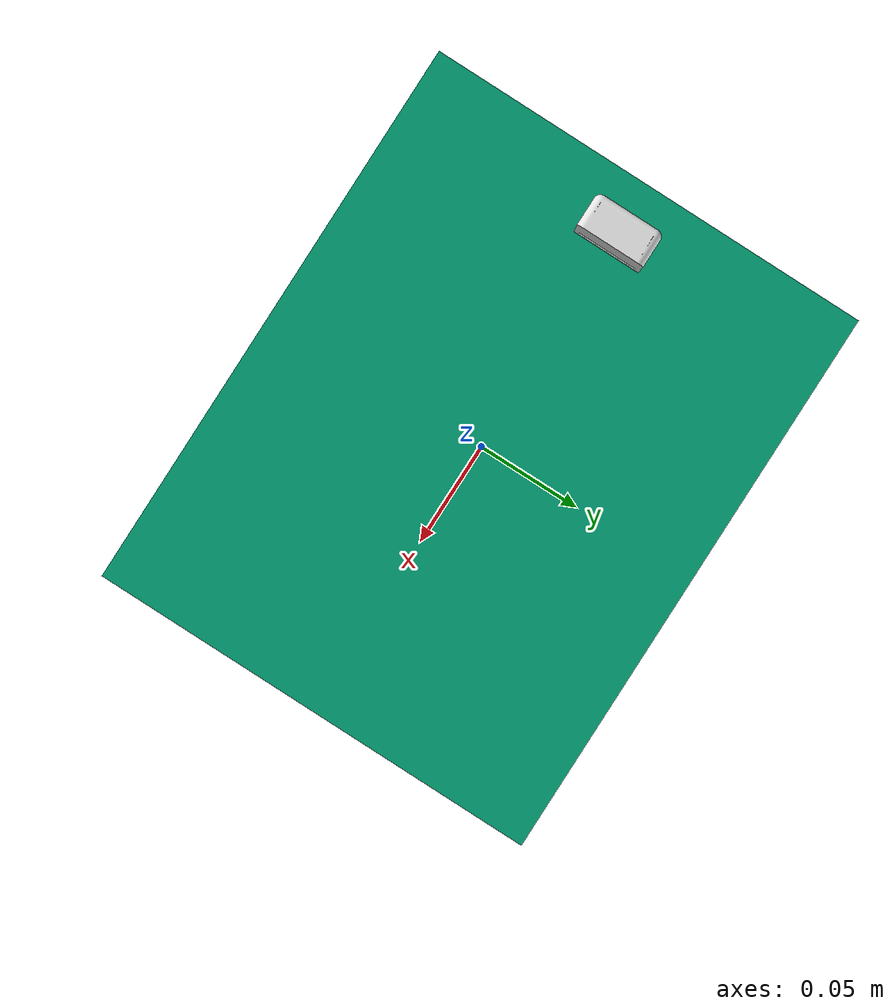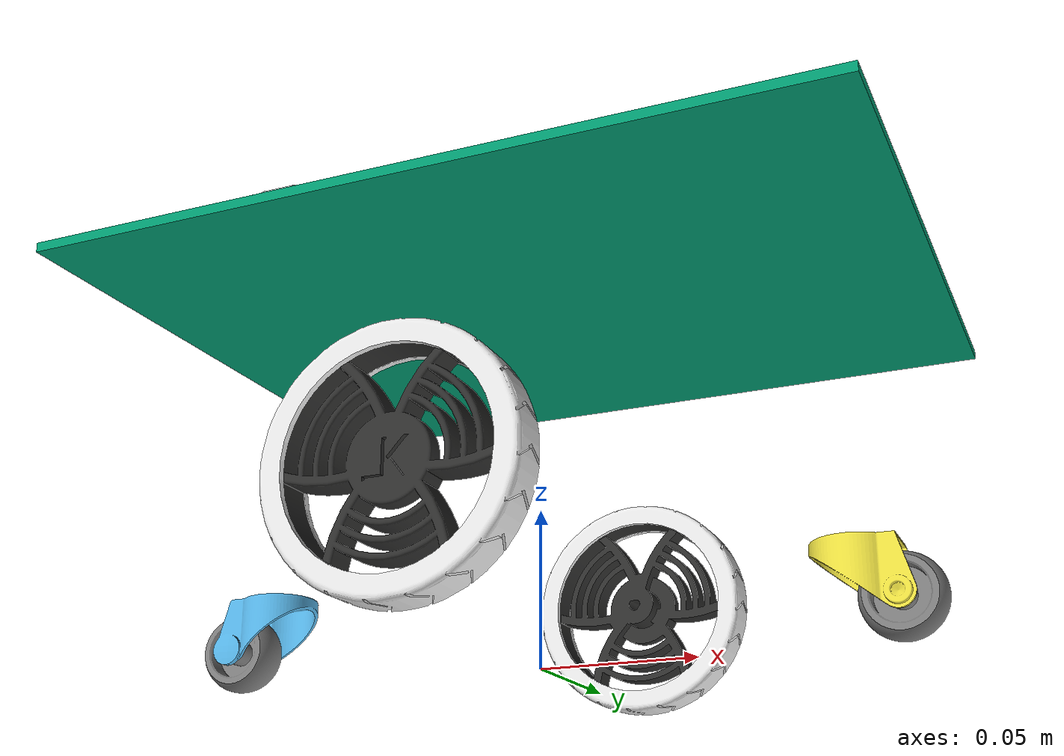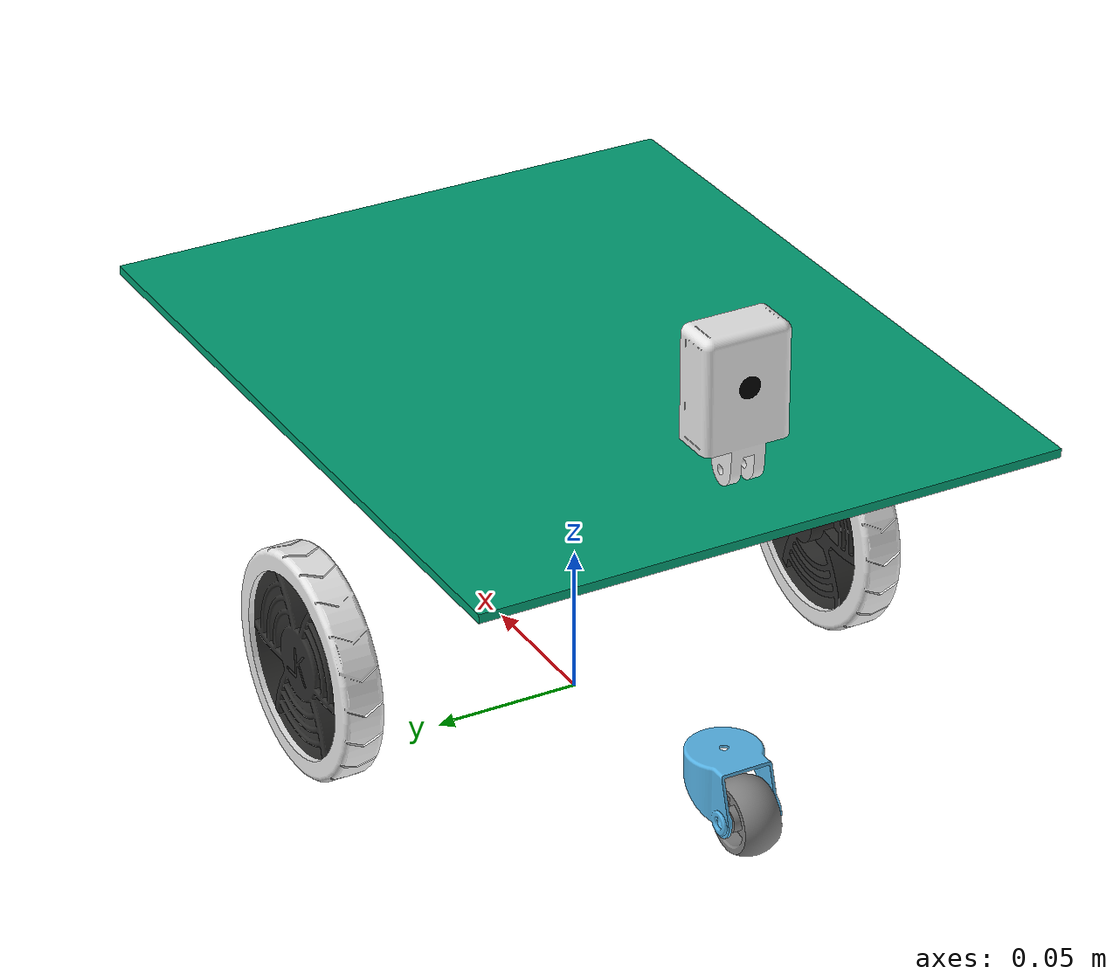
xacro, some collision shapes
<?xml version="1.0"?>
<robot xmlns:xacro="http://www.ros.org/wiki/xacro" name="revolt">

    <xacro:property name="package_name" value="revolt_description" />
    <xacro:property name="robot_name" value="revolt" />

    <xacro:arg name="use_real_ros_control" default="True" />

    <!-- ................................ BASE LINK .................................. -->

    <link name="base_footprint" />

    <link name="base_link" />

    <joint name="base_joint" type="fixed">
        <parent link="base_footprint" />
        <child link="base_link" />
        <origin xyz="0 0 0.0379" rpy="0 0 0" />
    </joint>

    <!-- ................................ CHASSIS .................................. -->

    <link name="chassis">

        <visual>
            <origin
                xyz="0.0010000000000000149828 -1.3877787807814456755e-17 0.034500000000000002887"
                rpy="3.141592653589793116 -0 1.3216940769347106485e-16" />
            <geometry>
                <mesh filename="package://revolt_description/meshes/revolt_chassis.dae" />
            </geometry>
        </visual>
        <!-- simplified collisions -->
        <collision>
            <origin
                xyz="0.0010005000000000577667 -2.0002055999002095288e-07 0.082746835314834926711"
                rpy="-3.877409121342316078e-26 -2.0033280460268717061e-25 -3.141592653589793116" />
            <geometry>
                <box size="0.24927900000000000058 0.19929299999999999793 0.0030000000000000000625" />
            </geometry>
        </collision>
        <collision>
            <origin
                xyz="0.0010000000000000149828 -1.3877787807814456755e-17 -0.014499999999999999001"
                rpy="3.141592653589793116 -0 -3.141592653589793116" />
            <geometry>
                <box size="0.14212600000000000233 0.16452699999999997882 0.0020000000000000000416" />
            </geometry>
        </collision>
        <collision>
            <origin xyz="0.12449999999999962486 5.0000000000294362862e-07 0.034500000000000002887"
                rpy="-1.570796326794896558 -0 -1.570796326794896558" />
            <geometry>
                <box size="0.20016100000000000558 0.10000000000000000555 0.0030000000000000000625" />
            </geometry>
        </collision>
        <collision>
            <origin xyz="-0.12249999999999959532 -5.0000000001682141643e-07 0.034500050000000004324"
                rpy="-1.570796326794896558 -0 1.57079632679489678" />
            <geometry>
                <box size="0.2004070000000000018 0.099495299999999994855 0.0030000000000000000625" />
            </geometry>
        </collision>
        <collision>
            <origin xyz="0.00045135000000001278698 0.098999999999999685474 0.06378895000000001092"
                rpy="-1.570796326794896558 -0 4.0769347106295352723e-22" />
            <geometry>
                <box size="0.083071299999999986818 0.040414099999999994473 0.0020000000000000000416" />
            </geometry>
        </collision>
        <collision>
            <origin xyz="-0.082699499999999717681 0.098999999999999685474 0.034500000000000002887"
                rpy="-1.570796326794896558 -0 4.0769347106295352723e-22" />
            <geometry>
                <box size="0.082917000000000004589 0.099797799999999992071 0.0020000000000000000416" />
            </geometry>
        </collision>
        <collision>
            <origin xyz="0.083849049999999758498 0.098999999999999699352 0.034306300000000004846"
                rpy="-1.570796326794896558 -0 4.0769347106295352723e-22" />
            <geometry>
                <box size="0.083871300000000009733 0.099612599999999995593 0.0020000000000000000416" />
            </geometry>
        </collision>
        <collision>
            <origin xyz="0.00045145000000001414466 -0.098999999999999713229 0.06378899999999999848"
                rpy="-1.570796326794896558 -0 -3.141592653589793116" />
            <geometry>
                <box size="0.082840099999999999847 0.04037840000000000179 0.0020000000000000000416" />
            </geometry>
        </collision>
        <collision>
            <origin xyz="-0.082699099999999706179 -0.098999999999999727107 0.034500000000000002887"
                rpy="-1.570796326794896558 -0 -3.141592653589793116" />
            <geometry>
                <box size="0.083039199999999993573 0.10000000000000000555 0.0020000000000000000416" />
            </geometry>
        </collision>
        <collision>
            <origin xyz="0.083849349999999753247 -0.098999999999999713229 0.034306300000000004846"
                rpy="-1.570796326794896558 -0 -3.141592653589793116" />
            <geometry>
                <box size="0.083955299999999996596 0.099612599999999995593 0.0020000000000000000416" />
            </geometry>
        </collision>
        <inertial>
            <origin
                xyz="0.0035619083245137942231 -3.5819939158716627821e-06 0.028737618229734977066"
                rpy="0 0 0" />
            <mass value="1.37541365667756188" />
            <inertia ixx="0.0074546494857456293073" ixy="9.3739832173881354348e-07"
                ixz="-0.00024696587687848359314" iyy="0.0085957720605103291739"
                iyz="9.872940559510540863e-07" izz="0.011229185530590277478" />
        </inertial>
    </link>

    <joint name="chassis_joint" type="fixed">
        <parent link="base_link" />
        <child link="chassis" />
        <origin xyz="0 0 0" rpy="0 0 0" />

    </joint>

    <!-- ................................ IMU .................................. -->

    <link name="imu" />
    <joint name="imu_frame" type="fixed">
        <origin xyz="0.003014671106491673136 -2.7204542826982439085e-05 0.084246835314834914166"
            rpy="3.877409121342316078e-26 2.0033280460268717061e-25 2.4319171015598684215e-16" />
        <parent link="chassis" />
        <child link="imu" />
        <axis xyz="0 0 0" />
    </joint>

    <!-- ................................ CAMERA .................................. -->

    <link name="camera_mount">
        <visual>
            <origin xyz="0.10003076211353316427 -0.013039422737043504519 -3.9422737043501517344e-05"
                rpy="-1.5707963267948970021 -2.1130201991908125724e-32 -9.9510893136977499032e-54" />
            <geometry>
                <mesh filename="package://revolt_description/meshes/camera_mount.dae" />
            </geometry>
        </visual>
    </link>

    <joint name="camera_mount" type="fixed">
        <origin xyz="-0.099030762113532788682 -2.0560008597292656995e-11 0.094246835314834839781"
            rpy="1.570796326794896558 -2.0033280460268570124e-25 2.4319171023353502458e-16" />
        <parent link="chassis" />
        <child link="camera_mount" />
        <axis xyz="0 0 1" />
        <limit effort="1" velocity="20" />
        <joint_properties friction="0.0" />
    </joint>

    <link name="camera_link" />
    <joint name="camera_joint" type="fixed">
        <origin xyz="-0.0065090556831789159187 0.028999999999999984124 1.1221743816224209809e-05"
            rpy="-1.570796326794896558 3.2526065174728515974e-16 1.570796326794896558" />
        <parent link="camera_mount" />
        <child link="camera_link" />
        <axis xyz="0 0 0" />
    </joint>

    <!-- ................................ LIDAR .................................. -->

    <link name="rplidar_laser_link" />
    <joint name="rplidar_laser_joint" type="fixed">
        <origin xyz="0.068995117891150689604 0.00011464698805746520449 0.15024683531486093813"
            rpy="9.8371194238862312071e-14 -8.8439464137082285948e-14 0.042558116801597767331" />
        <parent link="chassis" />
        <child link="rplidar_laser_link" />
        <axis xyz="0 0 0" />
    </joint>

    <!-- ................................ LEFT WHEEL .................................. -->

    <link name="left_wheel">
        <visual>
            <origin xyz="-3.0364619563320692272e-19 -3.252606517456513302e-19 0"
                rpy="-1.570796326794896558 -6.0896070622529636293e-33 0" />
            <geometry>
                <mesh filename="package://revolt_description/meshes/left_wheel.dae" />
            </geometry>
        </visual>
        <collision>
            <origin xyz="-3.0364619563320692272e-19 -3.252606517456513302e-19 0"
                rpy="-1.570796326794896558 -6.0896070622529636293e-33 0" />
            <geometry>
                <mesh filename="package://revolt_description/meshes/left_wheel.dae" />
            </geometry>
        </collision>
        <inertial>
            <origin
                xyz="-1.521330854137836883e-07 -2.0613620790072934315e-06 -7.8930583560674532967e-05"
                rpy="0 0 0" />
            <mass value="0.037841397954605116016" />
            <inertia ixx="1.6973436542168538149e-05" ixy="-2.4534200353398101827e-10"
                ixz="-2.4113466868023507071e-11" iyy="1.6973630599484165022e-05"
                iyz="-1.606441819284268252e-10" izz="3.2950793612564670081e-05" />
        </inertial>
    </link>

    <joint name="left_wheel_joint" type="continuous">
        <origin xyz="-2.5283525075024694638e-17 -0.094499999999999917399 5.2041704279304212832e-18"
            rpy="1.570796326794896558 0 8.3597150366120441552e-17" />
        <parent link="chassis" />
        <child link="left_wheel" />
        <axis xyz="0 0 1" />
        <limit effort="1" velocity="20" />
        <joint_properties friction="0.0" />
    </joint>

    <!-- ................................ RIGHT WHEEL .................................. -->

    <link name="right_wheel">
        <visual>
            <origin xyz="-3.0364619563319459676e-19 -3.252606517456513302e-19 0"
                rpy="-1.570796326794896558 5.5760257437813084088e-33 0" />
            <geometry>
                <mesh filename="package://revolt_description/meshes/right_wheel.dae" />
            </geometry>
        </visual>
        <collision>
            <origin xyz="-3.0364619563319459676e-19 -3.252606517456513302e-19 0"
                rpy="-1.570796326794896558 5.5760257437813084088e-33 0" />
            <geometry>
                <mesh filename="package://revolt_description/meshes/right_wheel.dae" />
            </geometry>
        </collision>
        <inertial>
            <origin
                xyz="-1.5213308545283286008e-07 -2.0613620790072934315e-06 -7.8937632198109502417e-05"
                rpy="0 0 0" />
            <mass value="0.037841397954605116016" />
            <inertia ixx="1.6973436500060328056e-05" ixy="-2.4534200353397791635e-10"
                ixz="-2.4113426285245354907e-11" iyy="1.6973630557375948152e-05"
                iyz="-1.6064363210071301693e-10" izz="3.2950793612564710738e-05" />
        </inertial>
    </link>

    <joint name="right_wheel_joint" type="continuous">
        <origin xyz="-5.9717925247838849906e-17 0.094499999999999431677 5.2041704279304212832e-18"
            rpy="1.570796326794896558 -0 3.141592653589793116" />
        <parent link="chassis" />
        <child link="right_wheel" />
        <axis xyz="0 0 -1" />
        <limit effort="1" velocity="20" />
        <joint_properties friction="0.0" />
    </joint>

    <!-- ................................ FRONT CASTER WHEEL .................................. -->

    <link name="caster_punch_bracket">
        <visual>
            <origin xyz="0.013499999999999998113 2.2538635793787358001e-18 -0.017000000000000001221"
                rpy="1.570796326794896336 -0 -2.8513139455734266103e-43" />
            <geometry>
                <mesh filename="package://revolt_description/meshes/caster_punch_bracket.dae" />
            </geometry>
        </visual>
        <inertial>
            <origin xyz="0.006241639410146364135 0.00015992521741832878106 -0.008867539427835038901"
                rpy="0 0 0" />
            <mass value="0.014764349810725824544" />
            <inertia ixx="1.6947747057761994951e-06" ixy="-1.7157250353294732119e-08"
                ixz="5.8578195048420969427e-07" iyy="1.7276290017100658618e-06"
                iyz="1.9205936593639116448e-08" izz="1.887839334913929401e-06" />
        </inertial>
    </link>

    <link name="caster_wheel">
        <visual>
            <origin xyz="0 0 8.6736173798840354721e-19"
                rpy="0 2.8513139455734266103e-43 3.9877083809531582924e-48" />
            <geometry>
                <mesh filename="package://revolt_description/meshes/caster_wheel.dae" />
            </geometry>
        </visual>
        <collision>
            <origin xyz="0 0 8.6736173798840354721e-19"
                rpy="0 2.8513139455734266103e-43 3.9877083809531582924e-48" />
            <geometry>
                <mesh filename="package://revolt_description/meshes/caster_wheel.dae" />
            </geometry>
        </collision>
        <inertial>
            <origin
                xyz="-4.7249388413420183081e-19 -2.1879547323420878759e-19 1.5277146050762926199e-18"
                rpy="0 0 0" />
            <mass value="0.004477188791594997018" />
            <inertia ixx="2.6913415982105394464e-07" ixy="8.1941462195960663794e-55"
                ixz="-2.043740271738193537e-49" iyy="2.6913415982105405052e-07"
                iyz="-3.0601115163453386514e-97" izz="4.4069974546829004994e-07" />
        </inertial>
    </link>

    <xacro:if value="$(arg use_real_ros_control)">
        <joint name="frontcaster_wheel_joint" type="fixed">
            <origin xyz="0.013500000000000025868 3.1212253173671393473e-18 -0.017000000000000001221"
                rpy="-1.570796326794896336 -0 3.141592653589793116" />
            <parent link="caster_punch_bracket" />
            <child link="caster_wheel" />
            <axis xyz="0 0 1" />
            <limit effort="1" velocity="20" />
            <joint_properties friction="0.0" />
        </joint>

        <joint name="frontcaster_rotation_joint" type="fixed">
            <origin
                xyz="-0.094939000879477097872 -2.5246608566260299064e-10 -0.0082499999999999969191"
                rpy="0 -0 -3.141592653589793116" />
            <parent link="chassis" />
            <child link="caster_punch_bracket" />
            <axis xyz="0 0 1" />
            <limit effort="1" velocity="20" />
            <joint_properties friction="0.0" />
        </joint>
    </xacro:if>

    <xacro:unless value="$(arg use_real_ros_control)">
        <joint name="frontcaster_wheel_joint" type="continuous">
            <origin xyz="0.013500000000000025868 3.1212253173671393473e-18 -0.017000000000000001221"
                rpy="-1.570796326794896336 -0 3.141592653589793116" />
            <parent link="caster_punch_bracket" />
            <child link="caster_wheel" />
            <axis xyz="0 0 1" />
            <limit effort="1" velocity="20" />
            <joint_properties friction="0.0" />
        </joint>

        <joint name="frontcaster_rotation_joint" type="continuous">
            <origin
                xyz="-0.094939000879477097872 -2.5246608566260299064e-10 -0.0082499999999999969191"
                rpy="0 -0 -3.141592653589793116" />
            <parent link="chassis" />
            <child link="caster_punch_bracket" />
            <axis xyz="0 0 1" />
            <limit effort="1" velocity="20" />
            <joint_properties friction="0.0" />
        </joint>

    </xacro:unless>

    <!-- ................................ BACK CASTER WHEEL .................................. -->

    <link name="caster_punch_bracket_2">
        <visual>
            <origin xyz="0.013499999999999998113 2.2538635793787358001e-18 -0.017000000000000001221"
                rpy="1.570796326794896336 -0 -1.1046173050810472067e-44" />
            <geometry>
                <mesh filename="package://revolt_description/meshes/caster_punch_bracket.dae" />
            </geometry>
        </visual>
        <inertial>
            <origin xyz="0.006241639410146364135 0.00015992521741832878106 -0.008867539427835038901"
                rpy="0 0 0" />
            <mass value="0.014764349810725824544" />
            <inertia ixx="1.6947747057761994951e-06" ixy="-1.7157250353294732119e-08"
                ixz="5.8578195048420969427e-07" iyy="1.7276290017100658618e-06"
                iyz="1.9205936593639116448e-08" izz="1.887839334913929401e-06" />
        </inertial>
    </link>

    <link name="caster_wheel_2">
        <visual>
            <origin xyz="0 0 8.6736173798840354721e-19"
                rpy="0 -8.2173010960533594582e-33 -5.4231385880628728748e-48" />
            <geometry>
                <mesh filename="package://revolt_description/meshes/caster_wheel.dae" />
            </geometry>
        </visual>
        <collision>
            <origin xyz="0 0 8.6736173798840354721e-19"
                rpy="0 -8.2173010960533594582e-33 -5.4231385880628728748e-48" />
            <geometry>
                <mesh filename="package://revolt_description/meshes/caster_wheel.dae" />
            </geometry>
        </collision>
        <inertial>
            <origin
                xyz="-4.7249388413420183081e-19 -2.1879547323420878759e-19 1.5277146050762926199e-18"
                rpy="0 0 0" />
            <mass value="0.004477188791594997018" />
            <inertia ixx="2.6913415982105394464e-07" ixy="-5.748568691734761381e-56"
                ixz="-1.4098060749829217299e-39" iyy="2.6913415982105405052e-07"
                iyz="-1.1993576996138098093e-86" izz="4.4069974546829004994e-07" />
        </inertial>
    </link>

    <xacro:if value="$(arg use_real_ros_control)">
        <joint name="backcaster_wheel_joint" type="fixed">
            <origin xyz="0.013499999999999998113 2.2538635793787358001e-18 -0.017000000000000001221"
                rpy="1.570796326794896336 -0 -3.4594555838018703633e-45" />
            <parent link="caster_punch_bracket_2" />
            <child link="caster_wheel_2" />
            <axis xyz="0 0 1" />
            <limit effort="1" velocity="20" />
            <joint_properties friction="0.0" />
        </joint>

        <joint name="backcaster_rotation_joint" type="fixed">
            <origin
                xyz="0.097009446841797339345 -2.4932854392201164728e-10 -0.0082499999999999969191"
                rpy="0 -0 1.3216940769347106485e-16" />
            <parent link="chassis" />
            <child link="caster_punch_bracket_2" />
            <axis xyz="0 0 1" />
            <limit effort="1" velocity="20" />
            <joint_properties friction="0.0" />
        </joint>
    </xacro:if>

    <xacro:unless value="$(arg use_real_ros_control)">
        <joint name="backcaster_wheel_joint" type="continuous">
            <origin xyz="0.013499999999999998113 2.2538635793787358001e-18 -0.017000000000000001221"
                rpy="1.570796326794896336 -0 -3.4594555838018703633e-45" />
            <parent link="caster_punch_bracket_2" />
            <child link="caster_wheel_2" />
            <axis xyz="0 0 1" />
            <limit effort="1" velocity="20" />
            <joint_properties friction="0.0" />
        </joint>

        <joint name="backcaster_rotation_joint" type="continuous">
            <origin
                xyz="0.097009446841797339345 -2.4932854392201164728e-10 -0.0082499999999999969191"
                rpy="0 -0 1.3216940769347106485e-16" />
            <parent link="chassis" />
            <child link="caster_punch_bracket_2" />
            <axis xyz="0 0 1" />
            <limit effort="1" velocity="20" />
            <joint_properties friction="0.0" />
        </joint>
    </xacro:unless>

    <!-- ros2_control -->
    <xacro:if value="$(arg use_real_ros_control)">
        <xacro:include filename="$(find ${package_name})/urdf/include/revolt_control.xacro" />
    </xacro:if>

</robot>
